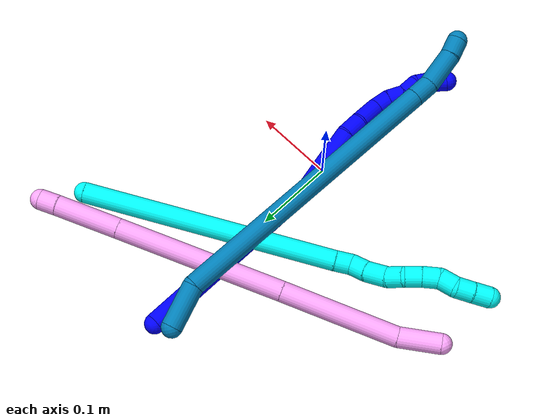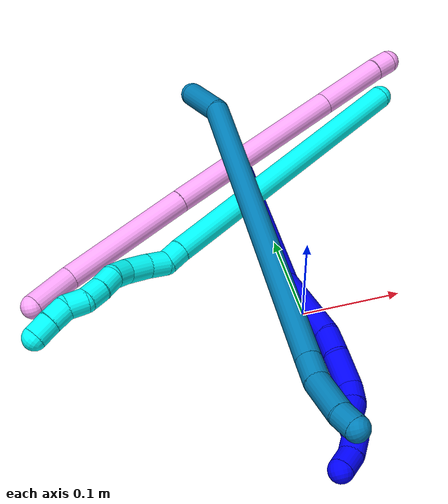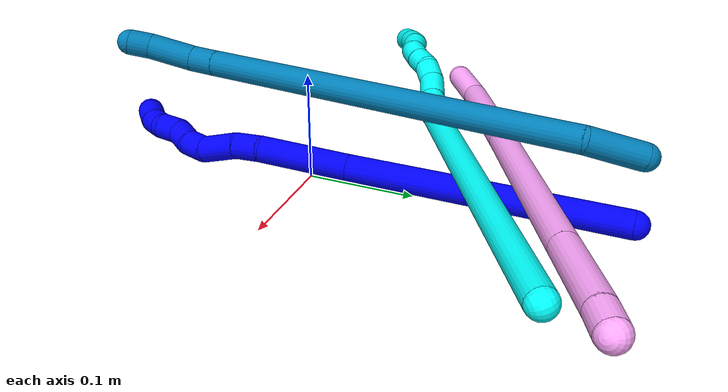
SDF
<sdf version="1.7">
 <world name="default">
  <model name="photoneo_s_sensor">
   <static>1</static>
   <pose>0 0 2 1.57079 1.57079 3.14159</pose>
   <link name="link">
    <inertial><mass>0.1</mass></inertial>
    <sensor name="sensor" type="depth">
     <update_rate>30</update_rate>
     <camera>
      <horizontal_fov>1.22</horizontal_fov>
      <image><width>1920</width><height>1200</height><format>B8G8R8</format></image>
      <clip><near>0.1</near><far>4</far></clip>
      <depth_camera><output>points</output></depth_camera>
     </camera>
     <plugin name="camera_plugin" filename="libgazebo_ros_depth_camera.so">
      <baseline>0.2</baseline>
      <alwaysOn>1</alwaysOn>
      <updateRate>0.0</updateRate>
      <cameraName>camera_ir</cameraName>
      <imageTopicName>/camera/color/image_raw</imageTopicName>
      <cameraInfoTopicName>/camera/color/camera_info</cameraInfoTopicName>
      <depthImageTopicName>/camera/depth/image_raw</depthImageTopicName>
      <depthImageCameraInfoTopicName>/camera/depth/camera_info</depthImageCameraInfoTopicName>
      <pointCloudTopicName>/camera/depth/points</pointCloudTopicName>
      <frameName>fr_optical</frameName>
      <pointCloudCutoff>0.1</pointCloudCutoff>
      <pointCloudCutoffMax>2.0</pointCloudCutoffMax>
      <distortionK1>0</distortionK1>
      <distortionK2>0</distortionK2>
      <distortionK3>0</distortionK3>
      <distortionT1>0</distortionT1>
      <distortionT2>0</distortionT2>
      <CxPrime>0</CxPrime>
      <Cx>0</Cx>
      <Cy>0</Cy>
      <focalLength>0</focalLength>
      <hackBaseline>0</hackBaseline>
     </plugin>
    </sensor>
   </link>
  </model>
  <model name="bin">
   <static>1</static>
   <link name="bottom">
    <collision name="collision-bottom">
     <pose>0 0 -0.01 0 -0 0</pose>
     <geometry><box><size>0.8 0.6 0.02</size></box></geometry>
     <surface>
      <friction><ode><mu>100</mu><mu2>100</mu2></ode></friction>
      <contact><collide_bitmask>65535</collide_bitmask></contact>
     </surface>
    </collision>
   </link>
   <link name="west_wall">
    <collision name="collision-west_wall">
     <pose>-0.41 0 0.1 0 -0 0</pose>
     <geometry><box><size>0.02 0.6 0.2</size></box></geometry>
     <surface>
      <friction><ode><mu>100</mu><mu2>100</mu2></ode></friction>
      <contact><collide_bitmask>65535</collide_bitmask></contact>
     </surface>
    </collision>
   </link>
   <link name="east_wall">
    <collision name="collision-east_wall">
     <pose>0.41 0 0.1 0 -0 0</pose>
     <geometry><box><size>0.02 0.6 0.2</size></box></geometry>
     <surface>
      <friction><ode><mu>100</mu><mu2>100</mu2></ode></friction>
      <contact><collide_bitmask>65535</collide_bitmask></contact>
     </surface>
    </collision>
   </link>
   <link name="south_wall">
    <collision name="collision-south_wall">
     <pose>0 -0.31 0.1 0 -0 0</pose>
     <geometry><box><size>0.8 0.02 0.2</size></box></geometry>
     <surface>
      <friction><ode><mu>100</mu><mu2>100</mu2></ode></friction>
      <contact><collide_bitmask>65535</collide_bitmask></contact>
     </surface>
    </collision>
   </link>
   <link name="north_wall">
    <collision name="collision-north_wall">
     <pose>0 0.31 0.1 0 -0 0</pose>
     <geometry><box><size>0.8 0.02 0.2</size></box></geometry>
     <surface>
      <friction><ode><mu>100</mu><mu2>100</mu2></ode></friction>
      <contact><collide_bitmask>65535</collide_bitmask></contact>
     </surface>
    </collision>
   </link>
  </model>
  <model name="1">
   <static>0</static>
   <link name="1">
    <collision name="collision-cylinder-e_1_1_4">
     <pose>0.004167 -0.067378 -0.107217 2.58053 0.032893 0.114049</pose>
     <geometry><cylinder><radius>0.0125</radius><length>0.253397</length></cylinder></geometry>
     <surface>
      <friction><ode><mu>1.16</mu><mu2>1.16</mu2><slip1>0</slip1><slip2>0</slip2></ode></friction>
      <contact><ode><kp>1e+06</kp><kd>1</kd><max_vel>0</max_vel><min_depth>0.001</min_depth></ode></contact>
     </surface>
    </collision>
    <visual name="visual-cylinder-e_1_1_4">
     <pose>0.004167 -0.067378 -0.107217 2.58053 0.032893 0.114049</pose>
     <geometry><cylinder><radius>0.0125</radius><length>0.253397</length></cylinder></geometry>
     <material><ambient>0 0 1 1</ambient></material>
    </visual>
    <collision name="collision-cylinder-e_2_4_5">
     <pose>0.018001 -0.160297 -0.246495 2.46892 0.231609 0.642392</pose>
     <geometry><cylinder><radius>0.0125</radius><length>0.084232</length></cylinder></geometry>
     <surface>
      <friction><ode><mu>1.16</mu><mu2>1.16</mu2><slip1>0</slip1><slip2>0</slip2></ode></friction>
      <contact><ode><kp>1e+06</kp><kd>1</kd><max_vel>0</max_vel><min_depth>0.001</min_depth></ode></contact>
     </surface>
    </collision>
    <visual name="visual-cylinder-e_2_4_5">
     <pose>0.018001 -0.160297 -0.246495 2.46892 0.231609 0.642392</pose>
     <geometry><cylinder><radius>0.0125</radius><length>0.084232</length></cylinder></geometry>
     <material><ambient>0 0 1 1</ambient></material>
    </visual>
    <collision name="collision-cylinder-e_3_5_6">
     <pose>0.028412 -0.192003 -0.289494 2.62824 0.059161 0.224523</pose>
     <geometry><cylinder><radius>0.0125</radius><length>0.025153</length></cylinder></geometry>
     <surface>
      <friction><ode><mu>1.16</mu><mu2>1.16</mu2><slip1>0</slip1><slip2>0</slip2></ode></friction>
      <contact><ode><kp>1e+06</kp><kd>1</kd><max_vel>0</max_vel><min_depth>0.001</min_depth></ode></contact>
     </surface>
    </collision>
    <visual name="visual-cylinder-e_3_5_6">
     <pose>0.028412 -0.192003 -0.289494 2.62824 0.059161 0.224523</pose>
     <geometry><cylinder><radius>0.0125</radius><length>0.025153</length></cylinder></geometry>
     <material><ambient>0 0 1 1</ambient></material>
    </visual>
    <collision name="collision-cylinder-e_4_6_7">
     <pose>0.030727 -0.20312 -0.317366 2.85716 0.088833 0.601966</pose>
     <geometry><cylinder><radius>0.0125</radius><length>0.035429</length></cylinder></geometry>
     <surface>
      <friction><ode><mu>1.16</mu><mu2>1.16</mu2><slip1>0</slip1><slip2>0</slip2></ode></friction>
      <contact><ode><kp>1e+06</kp><kd>1</kd><max_vel>0</max_vel><min_depth>0.001</min_depth></ode></contact>
     </surface>
    </collision>
    <visual name="visual-cylinder-e_4_6_7">
     <pose>0.030727 -0.20312 -0.317366 2.85716 0.088833 0.601966</pose>
     <geometry><cylinder><radius>0.0125</radius><length>0.035429</length></cylinder></geometry>
     <material><ambient>0 0 1 1</ambient></material>
    </visual>
    <collision name="collision-cylinder-e_5_7_8">
     <pose>0.03093 -0.214476 -0.342249 2.46327 -0.133312 -0.374012</pose>
     <geometry><cylinder><radius>0.0125</radius><length>0.020597</length></cylinder></geometry>
     <surface>
      <friction><ode><mu>1.16</mu><mu2>1.16</mu2><slip1>0</slip1><slip2>0</slip2></ode></friction>
      <contact><ode><kp>1e+06</kp><kd>1</kd><max_vel>0</max_vel><min_depth>0.001</min_depth></ode></contact>
     </surface>
    </collision>
    <visual name="visual-cylinder-e_5_7_8">
     <pose>0.03093 -0.214476 -0.342249 2.46327 -0.133312 -0.374012</pose>
     <geometry><cylinder><radius>0.0125</radius><length>0.020597</length></cylinder></geometry>
     <material><ambient>0 0 1 1</ambient></material>
    </visual>
    <collision name="collision-cylinder-e_6_8_9">
     <pose>0.024914 -0.227658 -0.356329 2.30634 -0.470403 -0.990346</pose>
     <geometry><cylinder><radius>0.0125</radius><length>0.020509</length></cylinder></geometry>
     <surface>
      <friction><ode><mu>1.16</mu><mu2>1.16</mu2><slip1>0</slip1><slip2>0</slip2></ode></friction>
      <contact><ode><kp>1e+06</kp><kd>1</kd><max_vel>0</max_vel><min_depth>0.001</min_depth></ode></contact>
     </surface>
    </collision>
    <visual name="visual-cylinder-e_6_8_9">
     <pose>0.024914 -0.227658 -0.356329 2.30634 -0.470403 -0.990346</pose>
     <geometry><cylinder><radius>0.0125</radius><length>0.020509</length></cylinder></geometry>
     <material><ambient>0 0 1 1</ambient></material>
    </visual>
    <collision name="collision-cylinder-e_7_9_10">
     <pose>0.020239 -0.240724 -0.370632 2.48555 -0.002638 -0.007753</pose>
     <geometry><cylinder><radius>0.0125</radius><length>0.020618</length></cylinder></geometry>
     <surface>
      <friction><ode><mu>1.16</mu><mu2>1.16</mu2><slip1>0</slip1><slip2>0</slip2></ode></friction>
      <contact><ode><kp>1e+06</kp><kd>1</kd><max_vel>0</max_vel><min_depth>0.001</min_depth></ode></contact>
     </surface>
    </collision>
    <visual name="visual-cylinder-e_7_9_10">
     <pose>0.020239 -0.240724 -0.370632 2.48555 -0.002638 -0.007753</pose>
     <geometry><cylinder><radius>0.0125</radius><length>0.020618</length></cylinder></geometry>
     <material><ambient>0 0 1 1</ambient></material>
    </visual>
    <collision name="collision-cylinder-e_8_10_11">
     <pose>0.015441 -0.251416 -0.386434 2.61836 -0.496177 -1.51536</pose>
     <geometry><cylinder><radius>0.0125</radius><length>0.020039</length></cylinder></geometry>
     <surface>
      <friction><ode><mu>1.16</mu><mu2>1.16</mu2><slip1>0</slip1><slip2>0</slip2></ode></friction>
      <contact><ode><kp>1e+06</kp><kd>1</kd><max_vel>0</max_vel><min_depth>0.001</min_depth></ode></contact>
     </surface>
    </collision>
    <visual name="visual-cylinder-e_8_10_11">
     <pose>0.015441 -0.251416 -0.386434 2.61836 -0.496177 -1.51536</pose>
     <geometry><cylinder><radius>0.0125</radius><length>0.020039</length></cylinder></geometry>
     <material><ambient>0 0 1 1</ambient></material>
    </visual>
    <collision name="collision-cylinder-e_9_11_2">
     <pose>0.003942 -0.261248 -0.399113 2.31972 -0.737106 -1.45039</pose>
     <geometry><cylinder><radius>0.0125</radius><length>0.020025</length></cylinder></geometry>
     <surface>
      <friction><ode><mu>1.16</mu><mu2>1.16</mu2><slip1>0</slip1><slip2>0</slip2></ode></friction>
      <contact><ode><kp>1e+06</kp><kd>1</kd><max_vel>0</max_vel><min_depth>0.001</min_depth></ode></contact>
     </surface>
    </collision>
    <visual name="visual-cylinder-e_9_11_2">
     <pose>0.003942 -0.261248 -0.399113 2.31972 -0.737106 -1.45039</pose>
     <geometry><cylinder><radius>0.0125</radius><length>0.020025</length></cylinder></geometry>
     <material><ambient>0 0 1 1</ambient></material>
    </visual>
    <collision name="collision-sphere-2">
     <pose>-0.002788 -0.266678 -0.404161 0 -0 0</pose>
     <geometry><sphere><radius>0.0125</radius></sphere></geometry>
     <surface>
      <friction><ode><mu>1.16</mu><mu2>1.16</mu2><slip1>0</slip1><slip2>0</slip2></ode></friction>
      <contact><ode><kp>1e+06</kp><kd>1</kd><max_vel>0</max_vel><min_depth>0.001</min_depth></ode></contact>
     </surface>
    </collision>
    <visual name="visual-sphere-2">
     <pose>-0.002788 -0.266678 -0.404161 0 -0 0</pose>
     <geometry><sphere><radius>0.0125</radius></sphere></geometry>
     <material><ambient>0 0 1 1</ambient></material>
    </visual>
    <collision name="collision-sphere-11">
     <pose>0.010671 -0.255819 -0.394066 0 -0 0</pose>
     <geometry><sphere><radius>0.0125</radius></sphere></geometry>
     <surface>
      <friction><ode><mu>1.16</mu><mu2>1.16</mu2><slip1>0</slip1><slip2>0</slip2></ode></friction>
      <contact><ode><kp>1e+06</kp><kd>1</kd><max_vel>0</max_vel><min_depth>0.001</min_depth></ode></contact>
     </surface>
    </collision>
    <visual name="visual-sphere-11">
     <pose>0.010671 -0.255819 -0.394066 0 -0 0</pose>
     <geometry><sphere><radius>0.0125</radius></sphere></geometry>
     <material><ambient>0 0 1 1</ambient></material>
    </visual>
    <collision name="collision-sphere-10">
     <pose>0.020211 -0.247013 -0.378801 0 -0 0</pose>
     <geometry><sphere><radius>0.0125</radius></sphere></geometry>
     <surface>
      <friction><ode><mu>1.16</mu><mu2>1.16</mu2><slip1>0</slip1><slip2>0</slip2></ode></friction>
      <contact><ode><kp>1e+06</kp><kd>1</kd><max_vel>0</max_vel><min_depth>0.001</min_depth></ode></contact>
     </surface>
    </collision>
    <visual name="visual-sphere-10">
     <pose>0.020211 -0.247013 -0.378801 0 -0 0</pose>
     <geometry><sphere><radius>0.0125</radius></sphere></geometry>
     <material><ambient>0 0 1 1</ambient></material>
    </visual>
    <collision name="collision-sphere-9">
     <pose>0.020266 -0.234436 -0.362463 0 -0 0</pose>
     <geometry><sphere><radius>0.0125</radius></sphere></geometry>
     <surface>
      <friction><ode><mu>1.16</mu><mu2>1.16</mu2><slip1>0</slip1><slip2>0</slip2></ode></friction>
      <contact><ode><kp>1e+06</kp><kd>1</kd><max_vel>0</max_vel><min_depth>0.001</min_depth></ode></contact>
     </surface>
    </collision>
    <visual name="visual-sphere-9">
     <pose>0.020266 -0.234436 -0.362463 0 -0 0</pose>
     <geometry><sphere><radius>0.0125</radius></sphere></geometry>
     <material><ambient>0 0 1 1</ambient></material>
    </visual>
    <collision name="collision-sphere-4">
     <pose>0.008334 -0.134756 -0.214434 0 -0 0</pose>
     <geometry><sphere><radius>0.0125</radius></sphere></geometry>
     <surface>
      <friction><ode><mu>1.16</mu><mu2>1.16</mu2><slip1>0</slip1><slip2>0</slip2></ode></friction>
      <contact><ode><kp>1e+06</kp><kd>1</kd><max_vel>0</max_vel><min_depth>0.001</min_depth></ode></contact>
     </surface>
    </collision>
    <visual name="visual-sphere-4">
     <pose>0.008334 -0.134756 -0.214434 0 -0 0</pose>
     <geometry><sphere><radius>0.0125</radius></sphere></geometry>
     <material><ambient>0 0 1 1</ambient></material>
    </visual>
    <collision name="collision-sphere-1">
     <geometry><sphere><radius>0.0125</radius></sphere></geometry>
     <surface>
      <friction><ode><mu>1.16</mu><mu2>1.16</mu2><slip1>0</slip1><slip2>0</slip2></ode></friction>
      <contact><ode><kp>1e+06</kp><kd>1</kd><max_vel>0</max_vel><min_depth>0.001</min_depth></ode></contact>
     </surface>
    </collision>
    <visual name="visual-sphere-1">
     <geometry><sphere><radius>0.0125</radius></sphere></geometry>
     <material><ambient>0 0 1 1</ambient></material>
    </visual>
    <collision name="collision-sphere-8">
     <pose>0.029561 -0.220881 -0.350196 0 -0 0</pose>
     <geometry><sphere><radius>0.0125</radius></sphere></geometry>
     <surface>
      <friction><ode><mu>1.16</mu><mu2>1.16</mu2><slip1>0</slip1><slip2>0</slip2></ode></friction>
      <contact><ode><kp>1e+06</kp><kd>1</kd><max_vel>0</max_vel><min_depth>0.001</min_depth></ode></contact>
     </surface>
    </collision>
    <visual name="visual-sphere-8">
     <pose>0.029561 -0.220881 -0.350196 0 -0 0</pose>
     <geometry><sphere><radius>0.0125</radius></sphere></geometry>
     <material><ambient>0 0 1 1</ambient></material>
    </visual>
    <collision name="collision-sphere-5">
     <pose>0.027669 -0.185838 -0.278557 0 -0 0</pose>
     <geometry><sphere><radius>0.0125</radius></sphere></geometry>
     <surface>
      <friction><ode><mu>1.16</mu><mu2>1.16</mu2><slip1>0</slip1><slip2>0</slip2></ode></friction>
      <contact><ode><kp>1e+06</kp><kd>1</kd><max_vel>0</max_vel><min_depth>0.001</min_depth></ode></contact>
     </surface>
    </collision>
    <visual name="visual-sphere-5">
     <pose>0.027669 -0.185838 -0.278557 0 -0 0</pose>
     <geometry><sphere><radius>0.0125</radius></sphere></geometry>
     <material><ambient>0 0 1 1</ambient></material>
    </visual>
    <collision name="collision-sphere-6">
     <pose>0.029156 -0.198169 -0.30043 0 -0 0</pose>
     <geometry><sphere><radius>0.0125</radius></sphere></geometry>
     <surface>
      <friction><ode><mu>1.16</mu><mu2>1.16</mu2><slip1>0</slip1><slip2>0</slip2></ode></friction>
      <contact><ode><kp>1e+06</kp><kd>1</kd><max_vel>0</max_vel><min_depth>0.001</min_depth></ode></contact>
     </surface>
    </collision>
    <visual name="visual-sphere-6">
     <pose>0.029156 -0.198169 -0.30043 0 -0 0</pose>
     <geometry><sphere><radius>0.0125</radius></sphere></geometry>
     <material><ambient>0 0 1 1</ambient></material>
    </visual>
    <collision name="collision-sphere-7">
     <pose>0.032299 -0.208071 -0.334301 0 -0 0</pose>
     <geometry><sphere><radius>0.0125</radius></sphere></geometry>
     <surface>
      <friction><ode><mu>1.16</mu><mu2>1.16</mu2><slip1>0</slip1><slip2>0</slip2></ode></friction>
      <contact><ode><kp>1e+06</kp><kd>1</kd><max_vel>0</max_vel><min_depth>0.001</min_depth></ode></contact>
     </surface>
    </collision>
    <visual name="visual-sphere-7">
     <pose>0.032299 -0.208071 -0.334301 0 -0 0</pose>
     <geometry><sphere><radius>0.0125</radius></sphere></geometry>
     <material><ambient>0 0 1 1</ambient></material>
    </visual>
    <inertial>
     <pose>0.012658 -0.133842 -0.208384 0 -0 0</pose>
     <mass>0.5</mass>
     <inertia>
      <ixx>0.001593</ixx>
      <ixy>0</ixy>
      <ixz>0</ixz>
      <iyy>-0.001018</iyy>
      <iyz>0</iyz>
      <izz>0.000679</izz>
     </inertia>
    </inertial>
   </link>
   <pose>-0.007295 0.287455 0.011496 -1.00795 -0.091675 -0.034552</pose>
  </model>
  <model name="3">
   <static>0</static>
   <link name="3">
    <collision name="collision-cylinder-e_1_1_4">
     <pose>-0.126585 -0.088237 -0.010183 1.68569 -0.95894 -1.05623</pose>
     <geometry><cylinder><radius>0.0125</radius><length>0.309278</length></cylinder></geometry>
     <surface>
      <friction><ode><mu>1.16</mu><mu2>1.16</mu2><slip1>0</slip1><slip2>0</slip2></ode></friction>
      <contact><ode><kp>1e+06</kp><kd>1</kd><max_vel>0</max_vel><min_depth>0.001</min_depth></ode></contact>
     </surface>
    </collision>
    <visual name="visual-cylinder-e_1_1_4">
     <pose>-0.126585 -0.088237 -0.010183 1.68569 -0.95894 -1.05623</pose>
     <geometry><cylinder><radius>0.0125</radius><length>0.309278</length></cylinder></geometry>
     <material><ambient>0.003922 1 0.996078 1</ambient></material>
    </visual>
    <collision name="collision-cylinder-e_2_4_5">
     <pose>-0.261404 -0.182318 -0.020367 1.57097 -0.953597 -0.953735</pose>
     <geometry><cylinder><radius>0.0125</radius><length>0.020196</length></cylinder></geometry>
     <surface>
      <friction><ode><mu>1.16</mu><mu2>1.16</mu2><slip1>0</slip1><slip2>0</slip2></ode></friction>
      <contact><ode><kp>1e+06</kp><kd>1</kd><max_vel>0</max_vel><min_depth>0.001</min_depth></ode></contact>
     </surface>
    </collision>
    <visual name="visual-cylinder-e_2_4_5">
     <pose>-0.261404 -0.182318 -0.020367 1.57097 -0.953597 -0.953735</pose>
     <geometry><cylinder><radius>0.0125</radius><length>0.020196</length></cylinder></geometry>
     <material><ambient>0.003922 1 0.996078 1</ambient></material>
    </visual>
    <collision name="collision-cylinder-e_3_5_6">
     <pose>-0.278334 -0.191913 -0.025065 2.46781 -0.965912 -1.96384</pose>
     <geometry><cylinder><radius>0.0125</radius><length>0.021141</length></cylinder></geometry>
     <surface>
      <friction><ode><mu>1.16</mu><mu2>1.16</mu2><slip1>0</slip1><slip2>0</slip2></ode></friction>
      <contact><ode><kp>1e+06</kp><kd>1</kd><max_vel>0</max_vel><min_depth>0.001</min_depth></ode></contact>
     </surface>
    </collision>
    <visual name="visual-cylinder-e_3_5_6">
     <pose>-0.278334 -0.191913 -0.025065 2.46781 -0.965912 -1.96384</pose>
     <geometry><cylinder><radius>0.0125</radius><length>0.021141</length></cylinder></geometry>
     <material><ambient>0.003922 1 0.996078 1</ambient></material>
    </visual>
    <collision name="collision-cylinder-e_4_6_7">
     <pose>-0.299086 -0.199401 -0.034079 2.42794 -1.12857 -2.07704</pose>
     <geometry><cylinder><radius>0.0125</radius><length>0.026682</length></cylinder></geometry>
     <surface>
      <friction><ode><mu>1.16</mu><mu2>1.16</mu2><slip1>0</slip1><slip2>0</slip2></ode></friction>
      <contact><ode><kp>1e+06</kp><kd>1</kd><max_vel>0</max_vel><min_depth>0.001</min_depth></ode></contact>
     </surface>
    </collision>
    <visual name="visual-cylinder-e_4_6_7">
     <pose>-0.299086 -0.199401 -0.034079 2.42794 -1.12857 -2.07704</pose>
     <geometry><cylinder><radius>0.0125</radius><length>0.026682</length></cylinder></geometry>
     <material><ambient>0.003922 1 0.996078 1</ambient></material>
    </visual>
    <collision name="collision-cylinder-e_5_7_8">
     <pose>-0.321155 -0.204268 -0.039656 2.41134 -1.40322 -2.29196</pose>
     <geometry><cylinder><radius>0.0125</radius><length>0.020307</length></cylinder></geometry>
     <surface>
      <friction><ode><mu>1.16</mu><mu2>1.16</mu2><slip1>0</slip1><slip2>0</slip2></ode></friction>
      <contact><ode><kp>1e+06</kp><kd>1</kd><max_vel>0</max_vel><min_depth>0.001</min_depth></ode></contact>
     </surface>
    </collision>
    <visual name="visual-cylinder-e_5_7_8">
     <pose>-0.321155 -0.204268 -0.039656 2.41134 -1.40322 -2.29196</pose>
     <geometry><cylinder><radius>0.0125</radius><length>0.020307</length></cylinder></geometry>
     <material><ambient>0.003922 1 0.996078 1</ambient></material>
    </visual>
    <collision name="collision-cylinder-e_6_8_9">
     <pose>-0.340481 -0.209447 -0.039749 1.2898 -1.14594 -0.90362</pose>
     <geometry><cylinder><radius>0.0125</radius><length>0.020447</length></cylinder></geometry>
     <surface>
      <friction><ode><mu>1.16</mu><mu2>1.16</mu2><slip1>0</slip1><slip2>0</slip2></ode></friction>
      <contact><ode><kp>1e+06</kp><kd>1</kd><max_vel>0</max_vel><min_depth>0.001</min_depth></ode></contact>
     </surface>
    </collision>
    <visual name="visual-cylinder-e_6_8_9">
     <pose>-0.340481 -0.209447 -0.039749 1.2898 -1.14594 -0.90362</pose>
     <geometry><cylinder><radius>0.0125</radius><length>0.020447</length></cylinder></geometry>
     <material><ambient>0.003922 1 0.996078 1</ambient></material>
    </visual>
    <collision name="collision-cylinder-e_7_9_10">
     <pose>-0.359072 -0.217723 -0.038605 1.57654 -1.14317 -1.1484</pose>
     <geometry><cylinder><radius>0.0125</radius><length>0.020389</length></cylinder></geometry>
     <surface>
      <friction><ode><mu>1.16</mu><mu2>1.16</mu2><slip1>0</slip1><slip2>0</slip2></ode></friction>
      <contact><ode><kp>1e+06</kp><kd>1</kd><max_vel>0</max_vel><min_depth>0.001</min_depth></ode></contact>
     </surface>
    </collision>
    <visual name="visual-cylinder-e_7_9_10">
     <pose>-0.359072 -0.217723 -0.038605 1.57654 -1.14317 -1.1484</pose>
     <geometry><cylinder><radius>0.0125</radius><length>0.020389</length></cylinder></geometry>
     <material><ambient>0.003922 1 0.996078 1</ambient></material>
    </visual>
    <collision name="collision-cylinder-e_8_10_11">
     <pose>-0.375935 -0.227396 -0.042499 2.18865 -0.848776 -1.43817</pose>
     <geometry><cylinder><radius>0.0125</radius><length>0.020216</length></cylinder></geometry>
     <surface>
      <friction><ode><mu>1.16</mu><mu2>1.16</mu2><slip1>0</slip1><slip2>0</slip2></ode></friction>
      <contact><ode><kp>1e+06</kp><kd>1</kd><max_vel>0</max_vel><min_depth>0.001</min_depth></ode></contact>
     </surface>
    </collision>
    <visual name="visual-cylinder-e_8_10_11">
     <pose>-0.375935 -0.227396 -0.042499 2.18865 -0.848776 -1.43817</pose>
     <geometry><cylinder><radius>0.0125</radius><length>0.020216</length></cylinder></geometry>
     <material><ambient>0.003922 1 0.996078 1</ambient></material>
    </visual>
    <collision name="collision-cylinder-e_9_11_12">
     <pose>-0.391106 -0.239638 -0.04636 1.56949 -0.840185 -0.839211</pose>
     <geometry><cylinder><radius>0.0125</radius><length>0.020368</length></cylinder></geometry>
     <surface>
      <friction><ode><mu>1.16</mu><mu2>1.16</mu2><slip1>0</slip1><slip2>0</slip2></ode></friction>
      <contact><ode><kp>1e+06</kp><kd>1</kd><max_vel>0</max_vel><min_depth>0.001</min_depth></ode></contact>
     </surface>
    </collision>
    <visual name="visual-cylinder-e_9_11_12">
     <pose>-0.391106 -0.239638 -0.04636 1.56949 -0.840185 -0.839211</pose>
     <geometry><cylinder><radius>0.0125</radius><length>0.020368</length></cylinder></geometry>
     <material><ambient>0.003922 1 0.996078 1</ambient></material>
    </visual>
    <collision name="collision-cylinder-e_10_12_2">
     <pose>-0.406252 -0.25368 -0.045796 1.49425 -0.805209 -0.751433</pose>
     <geometry><cylinder><radius>0.0125</radius><length>0.020976</length></cylinder></geometry>
     <surface>
      <friction><ode><mu>1.16</mu><mu2>1.16</mu2><slip1>0</slip1><slip2>0</slip2></ode></friction>
      <contact><ode><kp>1e+06</kp><kd>1</kd><max_vel>0</max_vel><min_depth>0.001</min_depth></ode></contact>
     </surface>
    </collision>
    <visual name="visual-cylinder-e_10_12_2">
     <pose>-0.406252 -0.25368 -0.045796 1.49425 -0.805209 -0.751433</pose>
     <geometry><cylinder><radius>0.0125</radius><length>0.020976</length></cylinder></geometry>
     <material><ambient>0.003922 1 0.996078 1</ambient></material>
    </visual>
    <collision name="collision-sphere-2">
     <pose>-0.413814 -0.260927 -0.04524 0 -0 0</pose>
     <geometry><sphere><radius>0.0125</radius></sphere></geometry>
     <surface>
      <friction><ode><mu>1.16</mu><mu2>1.16</mu2><slip1>0</slip1><slip2>0</slip2></ode></friction>
      <contact><ode><kp>1e+06</kp><kd>1</kd><max_vel>0</max_vel><min_depth>0.001</min_depth></ode></contact>
     </surface>
    </collision>
    <visual name="visual-sphere-2">
     <pose>-0.413814 -0.260927 -0.04524 0 -0 0</pose>
     <geometry><sphere><radius>0.0125</radius></sphere></geometry>
     <material><ambient>0.003922 1 0.996078 1</ambient></material>
    </visual>
    <collision name="collision-sphere-12">
     <pose>-0.398691 -0.246434 -0.046352 0 -0 0</pose>
     <geometry><sphere><radius>0.0125</radius></sphere></geometry>
     <surface>
      <friction><ode><mu>1.16</mu><mu2>1.16</mu2><slip1>0</slip1><slip2>0</slip2></ode></friction>
      <contact><ode><kp>1e+06</kp><kd>1</kd><max_vel>0</max_vel><min_depth>0.001</min_depth></ode></contact>
     </surface>
    </collision>
    <visual name="visual-sphere-12">
     <pose>-0.398691 -0.246434 -0.046352 0 -0 0</pose>
     <geometry><sphere><radius>0.0125</radius></sphere></geometry>
     <material><ambient>0.003922 1 0.996078 1</ambient></material>
    </visual>
    <collision name="collision-sphere-11">
     <pose>-0.383521 -0.232842 -0.046369 0 -0 0</pose>
     <geometry><sphere><radius>0.0125</radius></sphere></geometry>
     <surface>
      <friction><ode><mu>1.16</mu><mu2>1.16</mu2><slip1>0</slip1><slip2>0</slip2></ode></friction>
      <contact><ode><kp>1e+06</kp><kd>1</kd><max_vel>0</max_vel><min_depth>0.001</min_depth></ode></contact>
     </surface>
    </collision>
    <visual name="visual-sphere-11">
     <pose>-0.383521 -0.232842 -0.046369 0 -0 0</pose>
     <geometry><sphere><radius>0.0125</radius></sphere></geometry>
     <material><ambient>0.003922 1 0.996078 1</ambient></material>
    </visual>
    <collision name="collision-sphere-10">
     <pose>-0.368349 -0.221951 -0.038629 0 -0 0</pose>
     <geometry><sphere><radius>0.0125</radius></sphere></geometry>
     <surface>
      <friction><ode><mu>1.16</mu><mu2>1.16</mu2><slip1>0</slip1><slip2>0</slip2></ode></friction>
      <contact><ode><kp>1e+06</kp><kd>1</kd><max_vel>0</max_vel><min_depth>0.001</min_depth></ode></contact>
     </surface>
    </collision>
    <visual name="visual-sphere-10">
     <pose>-0.368349 -0.221951 -0.038629 0 -0 0</pose>
     <geometry><sphere><radius>0.0125</radius></sphere></geometry>
     <material><ambient>0.003922 1 0.996078 1</ambient></material>
    </visual>
    <collision name="collision-sphere-9">
     <pose>-0.349796 -0.213495 -0.038581 0 -0 0</pose>
     <geometry><sphere><radius>0.0125</radius></sphere></geometry>
     <surface>
      <friction><ode><mu>1.16</mu><mu2>1.16</mu2><slip1>0</slip1><slip2>0</slip2></ode></friction>
      <contact><ode><kp>1e+06</kp><kd>1</kd><max_vel>0</max_vel><min_depth>0.001</min_depth></ode></contact>
     </surface>
    </collision>
    <visual name="visual-sphere-9">
     <pose>-0.349796 -0.213495 -0.038581 0 -0 0</pose>
     <geometry><sphere><radius>0.0125</radius></sphere></geometry>
     <material><ambient>0.003922 1 0.996078 1</ambient></material>
    </visual>
    <collision name="collision-sphere-4">
     <pose>-0.253169 -0.176474 -0.020366 0 -0 0</pose>
     <geometry><sphere><radius>0.0125</radius></sphere></geometry>
     <surface>
      <friction><ode><mu>1.16</mu><mu2>1.16</mu2><slip1>0</slip1><slip2>0</slip2></ode></friction>
      <contact><ode><kp>1e+06</kp><kd>1</kd><max_vel>0</max_vel><min_depth>0.001</min_depth></ode></contact>
     </surface>
    </collision>
    <visual name="visual-sphere-4">
     <pose>-0.253169 -0.176474 -0.020366 0 -0 0</pose>
     <geometry><sphere><radius>0.0125</radius></sphere></geometry>
     <material><ambient>0.003922 1 0.996078 1</ambient></material>
    </visual>
    <collision name="collision-sphere-1">
     <geometry><sphere><radius>0.0125</radius></sphere></geometry>
     <surface>
      <friction><ode><mu>1.16</mu><mu2>1.16</mu2><slip1>0</slip1><slip2>0</slip2></ode></friction>
      <contact><ode><kp>1e+06</kp><kd>1</kd><max_vel>0</max_vel><min_depth>0.001</min_depth></ode></contact>
     </surface>
    </collision>
    <visual name="visual-sphere-1">
     <geometry><sphere><radius>0.0125</radius></sphere></geometry>
     <material><ambient>0.003922 1 0.996078 1</ambient></material>
    </visual>
    <collision name="collision-sphere-8">
     <pose>-0.331167 -0.205398 -0.040918 0 -0 0</pose>
     <geometry><sphere><radius>0.0125</radius></sphere></geometry>
     <surface>
      <friction><ode><mu>1.16</mu><mu2>1.16</mu2><slip1>0</slip1><slip2>0</slip2></ode></friction>
      <contact><ode><kp>1e+06</kp><kd>1</kd><max_vel>0</max_vel><min_depth>0.001</min_depth></ode></contact>
     </surface>
    </collision>
    <visual name="visual-sphere-8">
     <pose>-0.331167 -0.205398 -0.040918 0 -0 0</pose>
     <geometry><sphere><radius>0.0125</radius></sphere></geometry>
     <material><ambient>0.003922 1 0.996078 1</ambient></material>
    </visual>
    <collision name="collision-sphere-5">
     <pose>-0.269639 -0.188163 -0.020368 0 -0 0</pose>
     <geometry><sphere><radius>0.0125</radius></sphere></geometry>
     <surface>
      <friction><ode><mu>1.16</mu><mu2>1.16</mu2><slip1>0</slip1><slip2>0</slip2></ode></friction>
      <contact><ode><kp>1e+06</kp><kd>1</kd><max_vel>0</max_vel><min_depth>0.001</min_depth></ode></contact>
     </surface>
    </collision>
    <visual name="visual-sphere-5">
     <pose>-0.269639 -0.188163 -0.020368 0 -0 0</pose>
     <geometry><sphere><radius>0.0125</radius></sphere></geometry>
     <material><ambient>0.003922 1 0.996078 1</ambient></material>
    </visual>
    <collision name="collision-sphere-6">
     <pose>-0.287029 -0.195664 -0.029763 0 -0 0</pose>
     <geometry><sphere><radius>0.0125</radius></sphere></geometry>
     <surface>
      <friction><ode><mu>1.16</mu><mu2>1.16</mu2><slip1>0</slip1><slip2>0</slip2></ode></friction>
      <contact><ode><kp>1e+06</kp><kd>1</kd><max_vel>0</max_vel><min_depth>0.001</min_depth></ode></contact>
     </surface>
    </collision>
    <visual name="visual-sphere-6">
     <pose>-0.287029 -0.195664 -0.029763 0 -0 0</pose>
     <geometry><sphere><radius>0.0125</radius></sphere></geometry>
     <material><ambient>0.003922 1 0.996078 1</ambient></material>
    </visual>
    <collision name="collision-sphere-7">
     <pose>-0.311144 -0.203138 -0.038395 0 -0 0</pose>
     <geometry><sphere><radius>0.0125</radius></sphere></geometry>
     <surface>
      <friction><ode><mu>1.16</mu><mu2>1.16</mu2><slip1>0</slip1><slip2>0</slip2></ode></friction>
      <contact><ode><kp>1e+06</kp><kd>1</kd><max_vel>0</max_vel><min_depth>0.001</min_depth></ode></contact>
     </surface>
    </collision>
    <visual name="visual-sphere-7">
     <pose>-0.311144 -0.203138 -0.038395 0 -0 0</pose>
     <geometry><sphere><radius>0.0125</radius></sphere></geometry>
     <material><ambient>0.003922 1 0.996078 1</ambient></material>
    </visual>
    <inertial>
     <pose>-0.206372 -0.136037 -0.020338 0 -0 0</pose>
     <mass>0.5</mass>
     <inertia>
      <ixx>-0.000575</ixx>
      <ixy>0</ixy>
      <ixz>0</ixz>
      <iyy>0.00036</iyy>
      <iyz>0</iyz>
      <izz>0.003457</izz>
     </inertia>
    </inertial>
   </link>
   <pose>0.163896 0.241765 0.044221 1.95705 0.506859 0.802983</pose>
  </model>
  <model name="4">
   <static>0</static>
   <link name="4">
    <collision name="collision-cylinder-e_1_1_4">
     <pose>-0.007688 -5.8e-05 0.007825 0.007469 -0.77654 -0.003055</pose>
     <geometry><cylinder><radius>0.0125</radius><length>0.021939</length></cylinder></geometry>
     <surface>
      <friction><ode><mu>1.16</mu><mu2>1.16</mu2><slip1>0</slip1><slip2>0</slip2></ode></friction>
      <contact><ode><kp>1e+06</kp><kd>1</kd><max_vel>0</max_vel><min_depth>0.001</min_depth></ode></contact>
     </surface>
    </collision>
    <visual name="visual-cylinder-e_1_1_4">
     <pose>-0.007688 -5.8e-05 0.007825 0.007469 -0.77654 -0.003055</pose>
     <geometry><cylinder><radius>0.0125</radius><length>0.021939</length></cylinder></geometry>
     <material><ambient>1 0.65098 0.996078 1</ambient></material>
    </visual>
    <collision name="collision-cylinder-e_2_4_5">
     <pose>-0.041704 0.002517 0.043834 -0.093185 -0.749205 0.03666</pose>
     <geometry><cylinder><radius>0.0125</radius><length>0.077319</length></cylinder></geometry>
     <surface>
      <friction><ode><mu>1.16</mu><mu2>1.16</mu2><slip1>0</slip1><slip2>0</slip2></ode></friction>
      <contact><ode><kp>1e+06</kp><kd>1</kd><max_vel>0</max_vel><min_depth>0.001</min_depth></ode></contact>
     </surface>
    </collision>
    <visual name="visual-cylinder-e_2_4_5">
     <pose>-0.041704 0.002517 0.043834 -0.093185 -0.749205 0.03666</pose>
     <geometry><cylinder><radius>0.0125</radius><length>0.077319</length></cylinder></geometry>
     <material><ambient>1 0.65098 0.996078 1</ambient></material>
    </visual>
    <collision name="collision-cylinder-e_3_5_6">
     <pose>-0.137702 0.012547 0.147317 -0.097908 -0.744191 0.038237</pose>
     <geometry><cylinder><radius>0.0125</radius><length>0.205699</length></cylinder></geometry>
     <surface>
      <friction><ode><mu>1.16</mu><mu2>1.16</mu2><slip1>0</slip1><slip2>0</slip2></ode></friction>
      <contact><ode><kp>1e+06</kp><kd>1</kd><max_vel>0</max_vel><min_depth>0.001</min_depth></ode></contact>
     </surface>
    </collision>
    <visual name="visual-cylinder-e_3_5_6">
     <pose>-0.137702 0.012547 0.147317 -0.097908 -0.744191 0.038237</pose>
     <geometry><cylinder><radius>0.0125</radius><length>0.205699</length></cylinder></geometry>
     <material><ambient>1 0.65098 0.996078 1</ambient></material>
    </visual>
    <collision name="collision-cylinder-e_4_6_7">
     <pose>-0.255466 0.026468 0.275721 -0.12226 -0.7322 0.046922</pose>
     <geometry><cylinder><radius>0.0125</radius><length>0.143892</length></cylinder></geometry>
     <surface>
      <friction><ode><mu>1.16</mu><mu2>1.16</mu2><slip1>0</slip1><slip2>0</slip2></ode></friction>
      <contact><ode><kp>1e+06</kp><kd>1</kd><max_vel>0</max_vel><min_depth>0.001</min_depth></ode></contact>
     </surface>
    </collision>
    <visual name="visual-cylinder-e_4_6_7">
     <pose>-0.255466 0.026468 0.275721 -0.12226 -0.7322 0.046922</pose>
     <geometry><cylinder><radius>0.0125</radius><length>0.143892</length></cylinder></geometry>
     <material><ambient>1 0.65098 0.996078 1</ambient></material>
    </visual>
    <collision name="collision-cylinder-e_5_7_2">
     <pose>-0.324578 0.033563 0.343393 -0.039064 -0.964409 0.020449</pose>
     <geometry><cylinder><radius>0.0125</radius><length>0.051151</length></cylinder></geometry>
     <surface>
      <friction><ode><mu>1.16</mu><mu2>1.16</mu2><slip1>0</slip1><slip2>0</slip2></ode></friction>
      <contact><ode><kp>1e+06</kp><kd>1</kd><max_vel>0</max_vel><min_depth>0.001</min_depth></ode></contact>
     </surface>
    </collision>
    <visual name="visual-cylinder-e_5_7_2">
     <pose>-0.324578 0.033563 0.343393 -0.039064 -0.964409 0.020449</pose>
     <geometry><cylinder><radius>0.0125</radius><length>0.051151</length></cylinder></geometry>
     <material><ambient>1 0.65098 0.996078 1</ambient></material>
    </visual>
    <collision name="collision-sphere-2">
     <pose>-0.345594 0.034132 0.357957 0 -0 0</pose>
     <geometry><sphere><radius>0.0125</radius></sphere></geometry>
     <surface>
      <friction><ode><mu>1.16</mu><mu2>1.16</mu2><slip1>0</slip1><slip2>0</slip2></ode></friction>
      <contact><ode><kp>1e+06</kp><kd>1</kd><max_vel>0</max_vel><min_depth>0.001</min_depth></ode></contact>
     </surface>
    </collision>
    <visual name="visual-sphere-2">
     <pose>-0.345594 0.034132 0.357957 0 -0 0</pose>
     <geometry><sphere><radius>0.0125</radius></sphere></geometry>
     <material><ambient>1 0.65098 0.996078 1</ambient></material>
    </visual>
    <collision name="collision-sphere-7">
     <pose>-0.303562 0.032994 0.328828 0 -0 0</pose>
     <geometry><sphere><radius>0.0125</radius></sphere></geometry>
     <surface>
      <friction><ode><mu>1.16</mu><mu2>1.16</mu2><slip1>0</slip1><slip2>0</slip2></ode></friction>
      <contact><ode><kp>1e+06</kp><kd>1</kd><max_vel>0</max_vel><min_depth>0.001</min_depth></ode></contact>
     </surface>
    </collision>
    <visual name="visual-sphere-7">
     <pose>-0.303562 0.032994 0.328828 0 -0 0</pose>
     <geometry><sphere><radius>0.0125</radius></sphere></geometry>
     <material><ambient>1 0.65098 0.996078 1</ambient></material>
    </visual>
    <collision name="collision-sphere-6">
     <pose>-0.20737 0.019943 0.222614 0 -0 0</pose>
     <geometry><sphere><radius>0.0125</radius></sphere></geometry>
     <surface>
      <friction><ode><mu>1.16</mu><mu2>1.16</mu2><slip1>0</slip1><slip2>0</slip2></ode></friction>
      <contact><ode><kp>1e+06</kp><kd>1</kd><max_vel>0</max_vel><min_depth>0.001</min_depth></ode></contact>
     </surface>
    </collision>
    <visual name="visual-sphere-6">
     <pose>-0.20737 0.019943 0.222614 0 -0 0</pose>
     <geometry><sphere><radius>0.0125</radius></sphere></geometry>
     <material><ambient>1 0.65098 0.996078 1</ambient></material>
    </visual>
    <collision name="collision-sphere-5">
     <pose>-0.068034 0.005151 0.072019 0 -0 0</pose>
     <geometry><sphere><radius>0.0125</radius></sphere></geometry>
     <surface>
      <friction><ode><mu>1.16</mu><mu2>1.16</mu2><slip1>0</slip1><slip2>0</slip2></ode></friction>
      <contact><ode><kp>1e+06</kp><kd>1</kd><max_vel>0</max_vel><min_depth>0.001</min_depth></ode></contact>
     </surface>
    </collision>
    <visual name="visual-sphere-5">
     <pose>-0.068034 0.005151 0.072019 0 -0 0</pose>
     <geometry><sphere><radius>0.0125</radius></sphere></geometry>
     <material><ambient>1 0.65098 0.996078 1</ambient></material>
    </visual>
    <collision name="collision-sphere-1">
     <geometry><sphere><radius>0.0125</radius></sphere></geometry>
     <surface>
      <friction><ode><mu>1.16</mu><mu2>1.16</mu2><slip1>0</slip1><slip2>0</slip2></ode></friction>
      <contact><ode><kp>1e+06</kp><kd>1</kd><max_vel>0</max_vel><min_depth>0.001</min_depth></ode></contact>
     </surface>
    </collision>
    <visual name="visual-sphere-1">
     <geometry><sphere><radius>0.0125</radius></sphere></geometry>
     <material><ambient>1 0.65098 0.996078 1</ambient></material>
    </visual>
    <collision name="collision-sphere-4">
     <pose>-0.015375 -0.000117 0.015649 0 -0 0</pose>
     <geometry><sphere><radius>0.0125</radius></sphere></geometry>
     <surface>
      <friction><ode><mu>1.16</mu><mu2>1.16</mu2><slip1>0</slip1><slip2>0</slip2></ode></friction>
      <contact><ode><kp>1e+06</kp><kd>1</kd><max_vel>0</max_vel><min_depth>0.001</min_depth></ode></contact>
     </surface>
    </collision>
    <visual name="visual-sphere-4">
     <pose>-0.015375 -0.000117 0.015649 0 -0 0</pose>
     <geometry><sphere><radius>0.0125</radius></sphere></geometry>
     <material><ambient>1 0.65098 0.996078 1</ambient></material>
    </visual>
    <inertial>
     <pose>-0.170161 0.016599 0.182206 0 -0 0</pose>
     <mass>0.5</mass>
     <inertia>
      <ixx>0.000771</ixx>
      <ixy>0</ixy>
      <ixz>0</ixz>
      <iyy>0.001074</iyy>
      <iyz>0</iyz>
      <izz>0.000656</izz>
     </inertia>
    </inertial>
   </link>
   <pose>0.188923 0.287005 0.053358 -1.90337 0.302373 1.17244</pose>
  </model>
  <model name="9">
   <static>0</static>
   <link name="9">
    <collision name="collision-cylinder-e_1_1_4">
     <pose>-0.015382 -0.010424 -0.018408 2.62633 -0.628717 -1.77951</pose>
     <geometry><cylinder><radius>0.0125</radius><length>0.052312</length></cylinder></geometry>
     <surface>
      <friction><ode><mu>1.16</mu><mu2>1.16</mu2><slip1>0</slip1><slip2>0</slip2></ode></friction>
      <contact><ode><kp>1e+06</kp><kd>1</kd><max_vel>0</max_vel><min_depth>0.001</min_depth></ode></contact>
     </surface>
    </collision>
    <visual name="visual-cylinder-e_1_1_4">
     <pose>-0.015382 -0.010424 -0.018408 2.62633 -0.628717 -1.77951</pose>
     <geometry><cylinder><radius>0.0125</radius><length>0.052312</length></cylinder></geometry>
     <material><ambient>0 0.490196 0.709804 1</ambient></material>
    </visual>
    <collision name="collision-cylinder-e_2_4_5">
     <pose>-0.168574 -0.11176 -0.102005 2.19288 -0.888924 -1.49563</pose>
     <geometry><cylinder><radius>0.0125</radius><length>0.354998</length></cylinder></geometry>
     <surface>
      <friction><ode><mu>1.16</mu><mu2>1.16</mu2><slip1>0</slip1><slip2>0</slip2></ode></friction>
      <contact><ode><kp>1e+06</kp><kd>1</kd><max_vel>0</max_vel><min_depth>0.001</min_depth></ode></contact>
     </surface>
    </collision>
    <visual name="visual-cylinder-e_2_4_5">
     <pose>-0.168574 -0.11176 -0.102005 2.19288 -0.888924 -1.49563</pose>
     <geometry><cylinder><radius>0.0125</radius><length>0.354998</length></cylinder></geometry>
     <material><ambient>0 0.490196 0.709804 1</ambient></material>
    </visual>
    <collision name="collision-cylinder-e_3_5_6">
     <pose>-0.316327 -0.209286 -0.172046 2.20362 -0.881018 -1.49866</pose>
     <geometry><cylinder><radius>0.0125</radius><length>0.025783</length></cylinder></geometry>
     <surface>
      <friction><ode><mu>1.16</mu><mu2>1.16</mu2><slip1>0</slip1><slip2>0</slip2></ode></friction>
      <contact><ode><kp>1e+06</kp><kd>1</kd><max_vel>0</max_vel><min_depth>0.001</min_depth></ode></contact>
     </surface>
    </collision>
    <visual name="visual-cylinder-e_3_5_6">
     <pose>-0.316327 -0.209286 -0.172046 2.20362 -0.881018 -1.49866</pose>
     <geometry><cylinder><radius>0.0125</radius><length>0.025783</length></cylinder></geometry>
     <material><ambient>0 0.490196 0.709804 1</ambient></material>
    </visual>
    <collision name="collision-cylinder-e_4_6_7">
     <pose>-0.341123 -0.226844 -0.190014 2.44628 -0.715685 -1.6022</pose>
     <geometry><cylinder><radius>0.0125</radius><length>0.045271</length></cylinder></geometry>
     <surface>
      <friction><ode><mu>1.16</mu><mu2>1.16</mu2><slip1>0</slip1><slip2>0</slip2></ode></friction>
      <contact><ode><kp>1e+06</kp><kd>1</kd><max_vel>0</max_vel><min_depth>0.001</min_depth></ode></contact>
     </surface>
    </collision>
    <visual name="visual-cylinder-e_4_6_7">
     <pose>-0.341123 -0.226844 -0.190014 2.44628 -0.715685 -1.6022</pose>
     <geometry><cylinder><radius>0.0125</radius><length>0.045271</length></cylinder></geometry>
     <material><ambient>0 0.490196 0.709804 1</ambient></material>
    </visual>
    <collision name="collision-cylinder-e_5_7_2">
     <pose>-0.362842 -0.241462 -0.21064 2.68648 -0.687604 -1.99335</pose>
     <geometry><cylinder><radius>0.0125</radius><length>0.021637</length></cylinder></geometry>
     <surface>
      <friction><ode><mu>1.16</mu><mu2>1.16</mu2><slip1>0</slip1><slip2>0</slip2></ode></friction>
      <contact><ode><kp>1e+06</kp><kd>1</kd><max_vel>0</max_vel><min_depth>0.001</min_depth></ode></contact>
     </surface>
    </collision>
    <visual name="visual-cylinder-e_5_7_2">
     <pose>-0.362842 -0.241462 -0.21064 2.68648 -0.687604 -1.99335</pose>
     <geometry><cylinder><radius>0.0125</radius><length>0.021637</length></cylinder></geometry>
     <material><ambient>0 0.490196 0.709804 1</ambient></material>
    </visual>
    <collision name="collision-sphere-2">
     <pose>-0.369708 -0.245137 -0.218149 0 -0 0</pose>
     <geometry><sphere><radius>0.0125</radius></sphere></geometry>
     <surface>
      <friction><ode><mu>1.16</mu><mu2>1.16</mu2><slip1>0</slip1><slip2>0</slip2></ode></friction>
      <contact><ode><kp>1e+06</kp><kd>1</kd><max_vel>0</max_vel><min_depth>0.001</min_depth></ode></contact>
     </surface>
    </collision>
    <visual name="visual-sphere-2">
     <pose>-0.369708 -0.245137 -0.218149 0 -0 0</pose>
     <geometry><sphere><radius>0.0125</radius></sphere></geometry>
     <material><ambient>0 0.490196 0.709804 1</ambient></material>
    </visual>
    <collision name="collision-sphere-7">
     <pose>-0.355975 -0.237787 -0.203131 0 -0 0</pose>
     <geometry><sphere><radius>0.0125</radius></sphere></geometry>
     <surface>
      <friction><ode><mu>1.16</mu><mu2>1.16</mu2><slip1>0</slip1><slip2>0</slip2></ode></friction>
      <contact><ode><kp>1e+06</kp><kd>1</kd><max_vel>0</max_vel><min_depth>0.001</min_depth></ode></contact>
     </surface>
    </collision>
    <visual name="visual-sphere-7">
     <pose>-0.355975 -0.237787 -0.203131 0 -0 0</pose>
     <geometry><sphere><radius>0.0125</radius></sphere></geometry>
     <material><ambient>0 0.490196 0.709804 1</ambient></material>
    </visual>
    <collision name="collision-sphere-6">
     <pose>-0.326271 -0.215901 -0.176898 0 -0 0</pose>
     <geometry><sphere><radius>0.0125</radius></sphere></geometry>
     <surface>
      <friction><ode><mu>1.16</mu><mu2>1.16</mu2><slip1>0</slip1><slip2>0</slip2></ode></friction>
      <contact><ode><kp>1e+06</kp><kd>1</kd><max_vel>0</max_vel><min_depth>0.001</min_depth></ode></contact>
     </surface>
    </collision>
    <visual name="visual-sphere-6">
     <pose>-0.326271 -0.215901 -0.176898 0 -0 0</pose>
     <geometry><sphere><radius>0.0125</radius></sphere></geometry>
     <material><ambient>0 0.490196 0.709804 1</ambient></material>
    </visual>
    <collision name="collision-sphere-5">
     <pose>-0.306383 -0.202671 -0.167194 0 -0 0</pose>
     <geometry><sphere><radius>0.0125</radius></sphere></geometry>
     <surface>
      <friction><ode><mu>1.16</mu><mu2>1.16</mu2><slip1>0</slip1><slip2>0</slip2></ode></friction>
      <contact><ode><kp>1e+06</kp><kd>1</kd><max_vel>0</max_vel><min_depth>0.001</min_depth></ode></contact>
     </surface>
    </collision>
    <visual name="visual-sphere-5">
     <pose>-0.306383 -0.202671 -0.167194 0 -0 0</pose>
     <geometry><sphere><radius>0.0125</radius></sphere></geometry>
     <material><ambient>0 0.490196 0.709804 1</ambient></material>
    </visual>
    <collision name="collision-sphere-1">
     <geometry><sphere><radius>0.0125</radius></sphere></geometry>
     <surface>
      <friction><ode><mu>1.16</mu><mu2>1.16</mu2><slip1>0</slip1><slip2>0</slip2></ode></friction>
      <contact><ode><kp>1e+06</kp><kd>1</kd><max_vel>0</max_vel><min_depth>0.001</min_depth></ode></contact>
     </surface>
    </collision>
    <visual name="visual-sphere-1">
     <geometry><sphere><radius>0.0125</radius></sphere></geometry>
     <material><ambient>0 0.490196 0.709804 1</ambient></material>
    </visual>
    <collision name="collision-sphere-4">
     <pose>-0.030765 -0.020848 -0.036816 0 -0 0</pose>
     <geometry><sphere><radius>0.0125</radius></sphere></geometry>
     <surface>
      <friction><ode><mu>1.16</mu><mu2>1.16</mu2><slip1>0</slip1><slip2>0</slip2></ode></friction>
      <contact><ode><kp>1e+06</kp><kd>1</kd><max_vel>0</max_vel><min_depth>0.001</min_depth></ode></contact>
     </surface>
    </collision>
    <visual name="visual-sphere-4">
     <pose>-0.030765 -0.020848 -0.036816 0 -0 0</pose>
     <geometry><sphere><radius>0.0125</radius></sphere></geometry>
     <material><ambient>0 0.490196 0.709804 1</ambient></material>
    </visual>
    <inertial>
     <pose>-0.184195 -0.122219 -0.10954 0 -0 0</pose>
     <mass>0.5</mass>
     <inertia>
      <ixx>-0.002227</ixx>
      <ixy>0</ixy>
      <ixz>0</ixz>
      <iyy>-0.000188</iyy>
      <iyz>0</iyz>
      <izz>0.004834</izz>
     </inertia>
    </inertial>
   </link>
   <pose>-0.039239 0.286009 0.058004 -2.30694 -0.64815 1.61132</pose>
  </model>
 </world>
</sdf>
